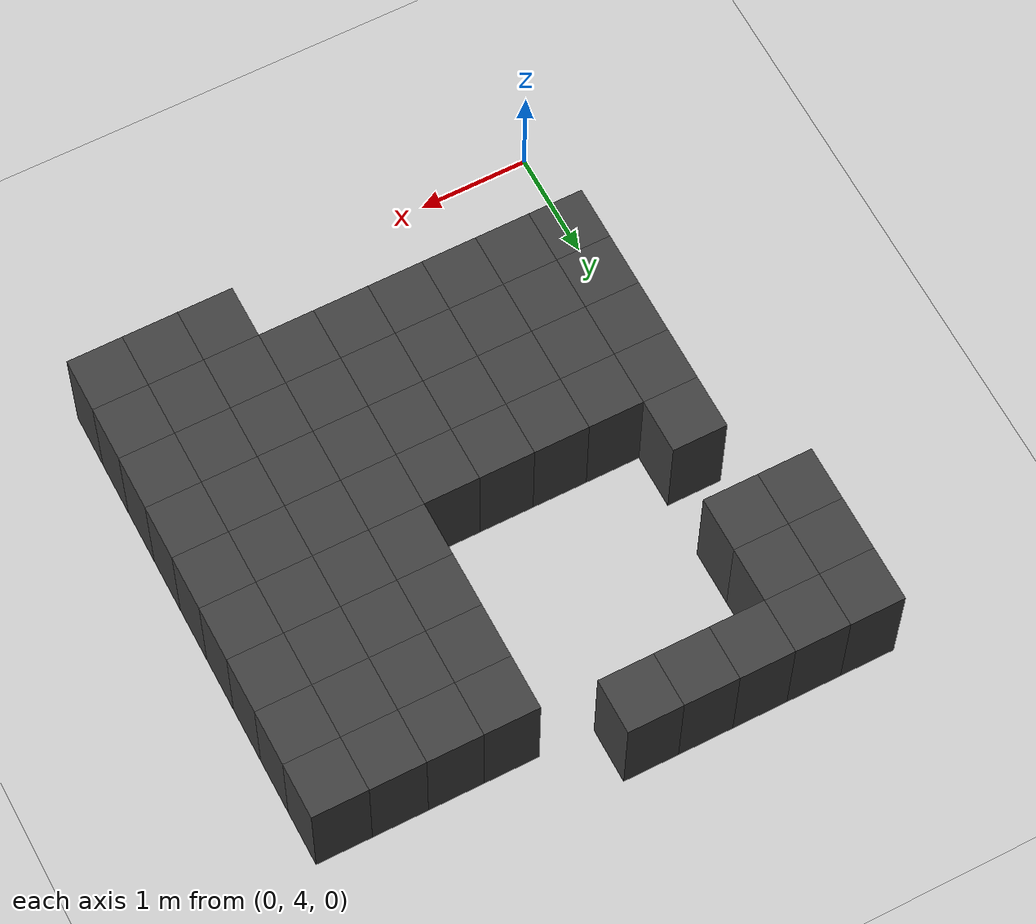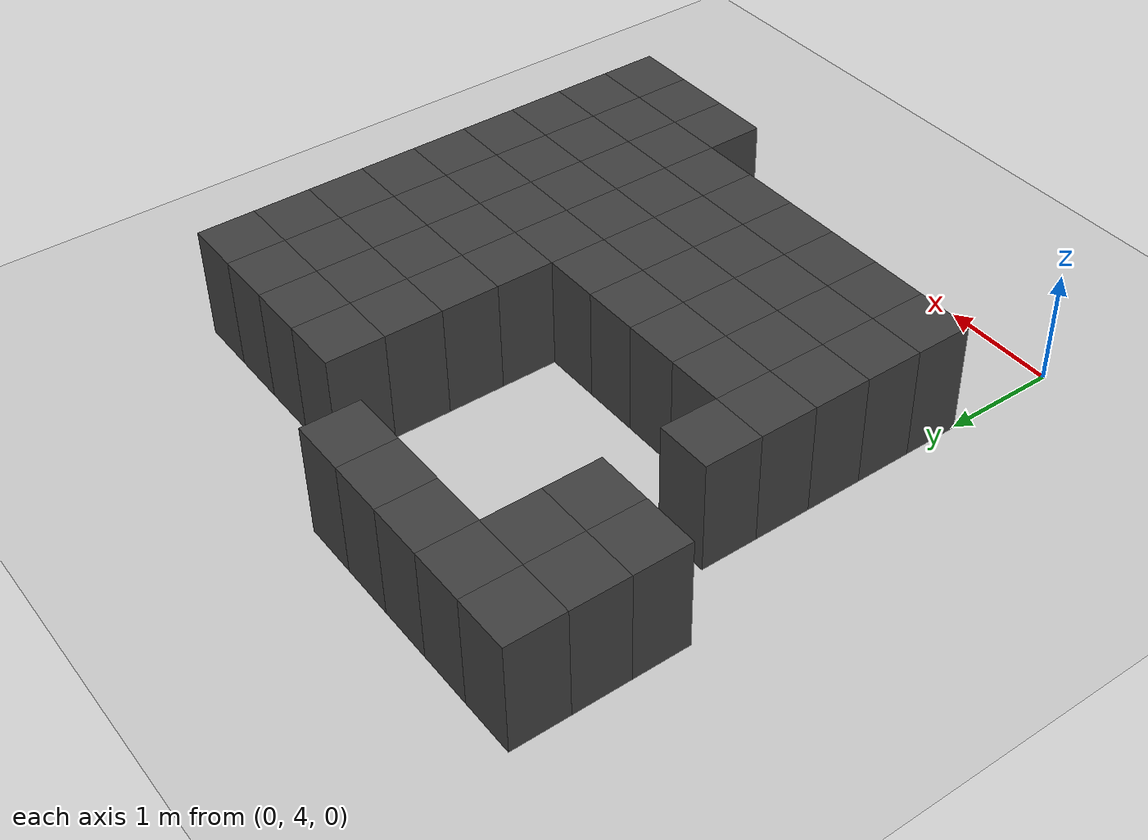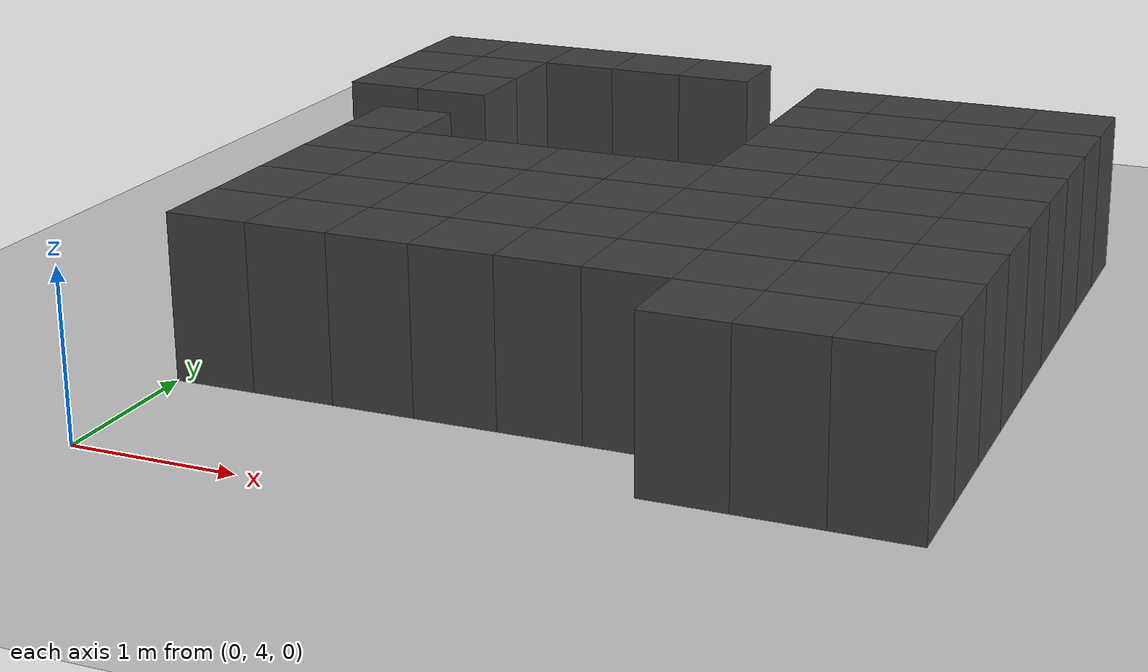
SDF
<sdf version="1.7">
 <world name="map_11515">
  <model name="ground_plane">
   <static>true</static>
   <link name="link">
    <collision name="collision">
     <geometry><plane><normal>0 0 1</normal><size>200 200</size></plane></geometry>
    </collision>
    <visual name="visual">
     <geometry><plane><normal>0 0 1</normal><size>200 200</size></plane></geometry>
     <material><ambient>0.8 0.8 0.8 1</ambient><diffuse>0.8 0.8 0.8 1</diffuse></material>
    </visual>
   </link>
  </model>
  <model name="maze_environment">
   <static>true</static>
   <link name="wall_300">
    <pose>-0.250 9.250 0.500 0 0 0</pose>
    <collision name="col"><geometry><box><size>0.5 0.5 1.0</size></box></geometry></collision>
    <visual name="vis">
     <geometry><box><size>0.5 0.5 1.0</size></box></geometry>
     <material><ambient>0.15 0.15 0.15 1</ambient><diffuse>0.25 0.25 0.25 1</diffuse></material>
    </visual>
   </link>
   <link name="wall_301">
    <pose>0.250 9.250 0.500 0 0 0</pose>
    <collision name="col"><geometry><box><size>0.5 0.5 1.0</size></box></geometry></collision>
    <visual name="vis">
     <geometry><box><size>0.5 0.5 1.0</size></box></geometry>
     <material><ambient>0.15 0.15 0.15 1</ambient><diffuse>0.25 0.25 0.25 1</diffuse></material>
    </visual>
   </link>
   <link name="wall_302">
    <pose>0.750 9.250 0.500 0 0 0</pose>
    <collision name="col"><geometry><box><size>0.5 0.5 1.0</size></box></geometry></collision>
    <visual name="vis">
     <geometry><box><size>0.5 0.5 1.0</size></box></geometry>
     <material><ambient>0.15 0.15 0.15 1</ambient><diffuse>0.25 0.25 0.25 1</diffuse></material>
    </visual>
   </link>
   <link name="wall_303">
    <pose>1.250 9.250 0.500 0 0 0</pose>
    <collision name="col"><geometry><box><size>0.5 0.5 1.0</size></box></geometry></collision>
    <visual name="vis">
     <geometry><box><size>0.5 0.5 1.0</size></box></geometry>
     <material><ambient>0.15 0.15 0.15 1</ambient><diffuse>0.25 0.25 0.25 1</diffuse></material>
    </visual>
   </link>
   <link name="wall_304">
    <pose>1.750 9.250 0.500 0 0 0</pose>
    <collision name="col"><geometry><box><size>0.5 0.5 1.0</size></box></geometry></collision>
    <visual name="vis">
     <geometry><box><size>0.5 0.5 1.0</size></box></geometry>
     <material><ambient>0.15 0.15 0.15 1</ambient><diffuse>0.25 0.25 0.25 1</diffuse></material>
    </visual>
   </link>
   <link name="wall_332">
    <pose>-0.250 8.750 0.500 0 0 0</pose>
    <collision name="col"><geometry><box><size>0.5 0.5 1.0</size></box></geometry></collision>
    <visual name="vis">
     <geometry><box><size>0.5 0.5 1.0</size></box></geometry>
     <material><ambient>0.15 0.15 0.15 1</ambient><diffuse>0.25 0.25 0.25 1</diffuse></material>
    </visual>
   </link>
   <link name="wall_333">
    <pose>0.250 8.750 0.500 0 0 0</pose>
    <collision name="col"><geometry><box><size>0.5 0.5 1.0</size></box></geometry></collision>
    <visual name="vis">
     <geometry><box><size>0.5 0.5 1.0</size></box></geometry>
     <material><ambient>0.15 0.15 0.15 1</ambient><diffuse>0.25 0.25 0.25 1</diffuse></material>
    </visual>
   </link>
   <link name="wall_334">
    <pose>2.750 8.750 0.500 0 0 0</pose>
    <collision name="col"><geometry><box><size>0.5 0.5 1.0</size></box></geometry></collision>
    <visual name="vis">
     <geometry><box><size>0.5 0.5 1.0</size></box></geometry>
     <material><ambient>0.15 0.15 0.15 1</ambient><diffuse>0.25 0.25 0.25 1</diffuse></material>
    </visual>
   </link>
   <link name="wall_335">
    <pose>3.250 8.750 0.500 0 0 0</pose>
    <collision name="col"><geometry><box><size>0.5 0.5 1.0</size></box></geometry></collision>
    <visual name="vis">
     <geometry><box><size>0.5 0.5 1.0</size></box></geometry>
     <material><ambient>0.15 0.15 0.15 1</ambient><diffuse>0.25 0.25 0.25 1</diffuse></material>
    </visual>
   </link>
   <link name="wall_336">
    <pose>3.750 8.750 0.500 0 0 0</pose>
    <collision name="col"><geometry><box><size>0.5 0.5 1.0</size></box></geometry></collision>
    <visual name="vis">
     <geometry><box><size>0.5 0.5 1.0</size></box></geometry>
     <material><ambient>0.15 0.15 0.15 1</ambient><diffuse>0.25 0.25 0.25 1</diffuse></material>
    </visual>
   </link>
   <link name="wall_337">
    <pose>4.250 8.750 0.500 0 0 0</pose>
    <collision name="col"><geometry><box><size>0.5 0.5 1.0</size></box></geometry></collision>
    <visual name="vis">
     <geometry><box><size>0.5 0.5 1.0</size></box></geometry>
     <material><ambient>0.15 0.15 0.15 1</ambient><diffuse>0.25 0.25 0.25 1</diffuse></material>
    </visual>
   </link>
   <link name="wall_372">
    <pose>-0.250 8.250 0.500 0 0 0</pose>
    <collision name="col"><geometry><box><size>0.5 0.5 1.0</size></box></geometry></collision>
    <visual name="vis">
     <geometry><box><size>0.5 0.5 1.0</size></box></geometry>
     <material><ambient>0.15 0.15 0.15 1</ambient><diffuse>0.25 0.25 0.25 1</diffuse></material>
    </visual>
   </link>
   <link name="wall_373">
    <pose>0.250 8.250 0.500 0 0 0</pose>
    <collision name="col"><geometry><box><size>0.5 0.5 1.0</size></box></geometry></collision>
    <visual name="vis">
     <geometry><box><size>0.5 0.5 1.0</size></box></geometry>
     <material><ambient>0.15 0.15 0.15 1</ambient><diffuse>0.25 0.25 0.25 1</diffuse></material>
    </visual>
   </link>
   <link name="wall_374">
    <pose>2.750 8.250 0.500 0 0 0</pose>
    <collision name="col"><geometry><box><size>0.5 0.5 1.0</size></box></geometry></collision>
    <visual name="vis">
     <geometry><box><size>0.5 0.5 1.0</size></box></geometry>
     <material><ambient>0.15 0.15 0.15 1</ambient><diffuse>0.25 0.25 0.25 1</diffuse></material>
    </visual>
   </link>
   <link name="wall_375">
    <pose>3.250 8.250 0.500 0 0 0</pose>
    <collision name="col"><geometry><box><size>0.5 0.5 1.0</size></box></geometry></collision>
    <visual name="vis">
     <geometry><box><size>0.5 0.5 1.0</size></box></geometry>
     <material><ambient>0.15 0.15 0.15 1</ambient><diffuse>0.25 0.25 0.25 1</diffuse></material>
    </visual>
   </link>
   <link name="wall_376">
    <pose>3.750 8.250 0.500 0 0 0</pose>
    <collision name="col"><geometry><box><size>0.5 0.5 1.0</size></box></geometry></collision>
    <visual name="vis">
     <geometry><box><size>0.5 0.5 1.0</size></box></geometry>
     <material><ambient>0.15 0.15 0.15 1</ambient><diffuse>0.25 0.25 0.25 1</diffuse></material>
    </visual>
   </link>
   <link name="wall_377">
    <pose>4.250 8.250 0.500 0 0 0</pose>
    <collision name="col"><geometry><box><size>0.5 0.5 1.0</size></box></geometry></collision>
    <visual name="vis">
     <geometry><box><size>0.5 0.5 1.0</size></box></geometry>
     <material><ambient>0.15 0.15 0.15 1</ambient><diffuse>0.25 0.25 0.25 1</diffuse></material>
    </visual>
   </link>
   <link name="wall_412">
    <pose>2.750 7.750 0.500 0 0 0</pose>
    <collision name="col"><geometry><box><size>0.5 0.5 1.0</size></box></geometry></collision>
    <visual name="vis">
     <geometry><box><size>0.5 0.5 1.0</size></box></geometry>
     <material><ambient>0.15 0.15 0.15 1</ambient><diffuse>0.25 0.25 0.25 1</diffuse></material>
    </visual>
   </link>
   <link name="wall_413">
    <pose>3.250 7.750 0.500 0 0 0</pose>
    <collision name="col"><geometry><box><size>0.5 0.5 1.0</size></box></geometry></collision>
    <visual name="vis">
     <geometry><box><size>0.5 0.5 1.0</size></box></geometry>
     <material><ambient>0.15 0.15 0.15 1</ambient><diffuse>0.25 0.25 0.25 1</diffuse></material>
    </visual>
   </link>
   <link name="wall_414">
    <pose>3.750 7.750 0.500 0 0 0</pose>
    <collision name="col"><geometry><box><size>0.5 0.5 1.0</size></box></geometry></collision>
    <visual name="vis">
     <geometry><box><size>0.5 0.5 1.0</size></box></geometry>
     <material><ambient>0.15 0.15 0.15 1</ambient><diffuse>0.25 0.25 0.25 1</diffuse></material>
    </visual>
   </link>
   <link name="wall_415">
    <pose>4.250 7.750 0.500 0 0 0</pose>
    <collision name="col"><geometry><box><size>0.5 0.5 1.0</size></box></geometry></collision>
    <visual name="vis">
     <geometry><box><size>0.5 0.5 1.0</size></box></geometry>
     <material><ambient>0.15 0.15 0.15 1</ambient><diffuse>0.25 0.25 0.25 1</diffuse></material>
    </visual>
   </link>
   <link name="wall_450">
    <pose>0.250 7.250 0.500 0 0 0</pose>
    <collision name="col"><geometry><box><size>0.5 0.5 1.0</size></box></geometry></collision>
    <visual name="vis">
     <geometry><box><size>0.5 0.5 1.0</size></box></geometry>
     <material><ambient>0.15 0.15 0.15 1</ambient><diffuse>0.25 0.25 0.25 1</diffuse></material>
    </visual>
   </link>
   <link name="wall_451">
    <pose>2.750 7.250 0.500 0 0 0</pose>
    <collision name="col"><geometry><box><size>0.5 0.5 1.0</size></box></geometry></collision>
    <visual name="vis">
     <geometry><box><size>0.5 0.5 1.0</size></box></geometry>
     <material><ambient>0.15 0.15 0.15 1</ambient><diffuse>0.25 0.25 0.25 1</diffuse></material>
    </visual>
   </link>
   <link name="wall_452">
    <pose>3.250 7.250 0.500 0 0 0</pose>
    <collision name="col"><geometry><box><size>0.5 0.5 1.0</size></box></geometry></collision>
    <visual name="vis">
     <geometry><box><size>0.5 0.5 1.0</size></box></geometry>
     <material><ambient>0.15 0.15 0.15 1</ambient><diffuse>0.25 0.25 0.25 1</diffuse></material>
    </visual>
   </link>
   <link name="wall_453">
    <pose>3.750 7.250 0.500 0 0 0</pose>
    <collision name="col"><geometry><box><size>0.5 0.5 1.0</size></box></geometry></collision>
    <visual name="vis">
     <geometry><box><size>0.5 0.5 1.0</size></box></geometry>
     <material><ambient>0.15 0.15 0.15 1</ambient><diffuse>0.25 0.25 0.25 1</diffuse></material>
    </visual>
   </link>
   <link name="wall_454">
    <pose>4.250 7.250 0.500 0 0 0</pose>
    <collision name="col"><geometry><box><size>0.5 0.5 1.0</size></box></geometry></collision>
    <visual name="vis">
     <geometry><box><size>0.5 0.5 1.0</size></box></geometry>
     <material><ambient>0.15 0.15 0.15 1</ambient><diffuse>0.25 0.25 0.25 1</diffuse></material>
    </visual>
   </link>
   <link name="wall_489">
    <pose>0.250 6.750 0.500 0 0 0</pose>
    <collision name="col"><geometry><box><size>0.5 0.5 1.0</size></box></geometry></collision>
    <visual name="vis">
     <geometry><box><size>0.5 0.5 1.0</size></box></geometry>
     <material><ambient>0.15 0.15 0.15 1</ambient><diffuse>0.25 0.25 0.25 1</diffuse></material>
    </visual>
   </link>
   <link name="wall_490">
    <pose>0.750 6.750 0.500 0 0 0</pose>
    <collision name="col"><geometry><box><size>0.5 0.5 1.0</size></box></geometry></collision>
    <visual name="vis">
     <geometry><box><size>0.5 0.5 1.0</size></box></geometry>
     <material><ambient>0.15 0.15 0.15 1</ambient><diffuse>0.25 0.25 0.25 1</diffuse></material>
    </visual>
   </link>
   <link name="wall_491">
    <pose>1.250 6.750 0.500 0 0 0</pose>
    <collision name="col"><geometry><box><size>0.5 0.5 1.0</size></box></geometry></collision>
    <visual name="vis">
     <geometry><box><size>0.5 0.5 1.0</size></box></geometry>
     <material><ambient>0.15 0.15 0.15 1</ambient><diffuse>0.25 0.25 0.25 1</diffuse></material>
    </visual>
   </link>
   <link name="wall_492">
    <pose>1.750 6.750 0.500 0 0 0</pose>
    <collision name="col"><geometry><box><size>0.5 0.5 1.0</size></box></geometry></collision>
    <visual name="vis">
     <geometry><box><size>0.5 0.5 1.0</size></box></geometry>
     <material><ambient>0.15 0.15 0.15 1</ambient><diffuse>0.25 0.25 0.25 1</diffuse></material>
    </visual>
   </link>
   <link name="wall_493">
    <pose>2.250 6.750 0.500 0 0 0</pose>
    <collision name="col"><geometry><box><size>0.5 0.5 1.0</size></box></geometry></collision>
    <visual name="vis">
     <geometry><box><size>0.5 0.5 1.0</size></box></geometry>
     <material><ambient>0.15 0.15 0.15 1</ambient><diffuse>0.25 0.25 0.25 1</diffuse></material>
    </visual>
   </link>
   <link name="wall_494">
    <pose>2.750 6.750 0.500 0 0 0</pose>
    <collision name="col"><geometry><box><size>0.5 0.5 1.0</size></box></geometry></collision>
    <visual name="vis">
     <geometry><box><size>0.5 0.5 1.0</size></box></geometry>
     <material><ambient>0.15 0.15 0.15 1</ambient><diffuse>0.25 0.25 0.25 1</diffuse></material>
    </visual>
   </link>
   <link name="wall_495">
    <pose>3.250 6.750 0.500 0 0 0</pose>
    <collision name="col"><geometry><box><size>0.5 0.5 1.0</size></box></geometry></collision>
    <visual name="vis">
     <geometry><box><size>0.5 0.5 1.0</size></box></geometry>
     <material><ambient>0.15 0.15 0.15 1</ambient><diffuse>0.25 0.25 0.25 1</diffuse></material>
    </visual>
   </link>
   <link name="wall_496">
    <pose>3.750 6.750 0.500 0 0 0</pose>
    <collision name="col"><geometry><box><size>0.5 0.5 1.0</size></box></geometry></collision>
    <visual name="vis">
     <geometry><box><size>0.5 0.5 1.0</size></box></geometry>
     <material><ambient>0.15 0.15 0.15 1</ambient><diffuse>0.25 0.25 0.25 1</diffuse></material>
    </visual>
   </link>
   <link name="wall_497">
    <pose>4.250 6.750 0.500 0 0 0</pose>
    <collision name="col"><geometry><box><size>0.5 0.5 1.0</size></box></geometry></collision>
    <visual name="vis">
     <geometry><box><size>0.5 0.5 1.0</size></box></geometry>
     <material><ambient>0.15 0.15 0.15 1</ambient><diffuse>0.25 0.25 0.25 1</diffuse></material>
    </visual>
   </link>
   <link name="wall_532">
    <pose>0.250 6.250 0.500 0 0 0</pose>
    <collision name="col"><geometry><box><size>0.5 0.5 1.0</size></box></geometry></collision>
    <visual name="vis">
     <geometry><box><size>0.5 0.5 1.0</size></box></geometry>
     <material><ambient>0.15 0.15 0.15 1</ambient><diffuse>0.25 0.25 0.25 1</diffuse></material>
    </visual>
   </link>
   <link name="wall_533">
    <pose>0.750 6.250 0.500 0 0 0</pose>
    <collision name="col"><geometry><box><size>0.5 0.5 1.0</size></box></geometry></collision>
    <visual name="vis">
     <geometry><box><size>0.5 0.5 1.0</size></box></geometry>
     <material><ambient>0.15 0.15 0.15 1</ambient><diffuse>0.25 0.25 0.25 1</diffuse></material>
    </visual>
   </link>
   <link name="wall_534">
    <pose>1.250 6.250 0.500 0 0 0</pose>
    <collision name="col"><geometry><box><size>0.5 0.5 1.0</size></box></geometry></collision>
    <visual name="vis">
     <geometry><box><size>0.5 0.5 1.0</size></box></geometry>
     <material><ambient>0.15 0.15 0.15 1</ambient><diffuse>0.25 0.25 0.25 1</diffuse></material>
    </visual>
   </link>
   <link name="wall_535">
    <pose>1.750 6.250 0.500 0 0 0</pose>
    <collision name="col"><geometry><box><size>0.5 0.5 1.0</size></box></geometry></collision>
    <visual name="vis">
     <geometry><box><size>0.5 0.5 1.0</size></box></geometry>
     <material><ambient>0.15 0.15 0.15 1</ambient><diffuse>0.25 0.25 0.25 1</diffuse></material>
    </visual>
   </link>
   <link name="wall_536">
    <pose>2.250 6.250 0.500 0 0 0</pose>
    <collision name="col"><geometry><box><size>0.5 0.5 1.0</size></box></geometry></collision>
    <visual name="vis">
     <geometry><box><size>0.5 0.5 1.0</size></box></geometry>
     <material><ambient>0.15 0.15 0.15 1</ambient><diffuse>0.25 0.25 0.25 1</diffuse></material>
    </visual>
   </link>
   <link name="wall_537">
    <pose>2.750 6.250 0.500 0 0 0</pose>
    <collision name="col"><geometry><box><size>0.5 0.5 1.0</size></box></geometry></collision>
    <visual name="vis">
     <geometry><box><size>0.5 0.5 1.0</size></box></geometry>
     <material><ambient>0.15 0.15 0.15 1</ambient><diffuse>0.25 0.25 0.25 1</diffuse></material>
    </visual>
   </link>
   <link name="wall_538">
    <pose>3.250 6.250 0.500 0 0 0</pose>
    <collision name="col"><geometry><box><size>0.5 0.5 1.0</size></box></geometry></collision>
    <visual name="vis">
     <geometry><box><size>0.5 0.5 1.0</size></box></geometry>
     <material><ambient>0.15 0.15 0.15 1</ambient><diffuse>0.25 0.25 0.25 1</diffuse></material>
    </visual>
   </link>
   <link name="wall_539">
    <pose>3.750 6.250 0.500 0 0 0</pose>
    <collision name="col"><geometry><box><size>0.5 0.5 1.0</size></box></geometry></collision>
    <visual name="vis">
     <geometry><box><size>0.5 0.5 1.0</size></box></geometry>
     <material><ambient>0.15 0.15 0.15 1</ambient><diffuse>0.25 0.25 0.25 1</diffuse></material>
    </visual>
   </link>
   <link name="wall_540">
    <pose>4.250 6.250 0.500 0 0 0</pose>
    <collision name="col"><geometry><box><size>0.5 0.5 1.0</size></box></geometry></collision>
    <visual name="vis">
     <geometry><box><size>0.5 0.5 1.0</size></box></geometry>
     <material><ambient>0.15 0.15 0.15 1</ambient><diffuse>0.25 0.25 0.25 1</diffuse></material>
    </visual>
   </link>
   <link name="wall_574">
    <pose>0.250 5.750 0.500 0 0 0</pose>
    <collision name="col"><geometry><box><size>0.5 0.5 1.0</size></box></geometry></collision>
    <visual name="vis">
     <geometry><box><size>0.5 0.5 1.0</size></box></geometry>
     <material><ambient>0.15 0.15 0.15 1</ambient><diffuse>0.25 0.25 0.25 1</diffuse></material>
    </visual>
   </link>
   <link name="wall_575">
    <pose>0.750 5.750 0.500 0 0 0</pose>
    <collision name="col"><geometry><box><size>0.5 0.5 1.0</size></box></geometry></collision>
    <visual name="vis">
     <geometry><box><size>0.5 0.5 1.0</size></box></geometry>
     <material><ambient>0.15 0.15 0.15 1</ambient><diffuse>0.25 0.25 0.25 1</diffuse></material>
    </visual>
   </link>
   <link name="wall_576">
    <pose>1.250 5.750 0.500 0 0 0</pose>
    <collision name="col"><geometry><box><size>0.5 0.5 1.0</size></box></geometry></collision>
    <visual name="vis">
     <geometry><box><size>0.5 0.5 1.0</size></box></geometry>
     <material><ambient>0.15 0.15 0.15 1</ambient><diffuse>0.25 0.25 0.25 1</diffuse></material>
    </visual>
   </link>
   <link name="wall_577">
    <pose>1.750 5.750 0.500 0 0 0</pose>
    <collision name="col"><geometry><box><size>0.5 0.5 1.0</size></box></geometry></collision>
    <visual name="vis">
     <geometry><box><size>0.5 0.5 1.0</size></box></geometry>
     <material><ambient>0.15 0.15 0.15 1</ambient><diffuse>0.25 0.25 0.25 1</diffuse></material>
    </visual>
   </link>
   <link name="wall_578">
    <pose>2.250 5.750 0.500 0 0 0</pose>
    <collision name="col"><geometry><box><size>0.5 0.5 1.0</size></box></geometry></collision>
    <visual name="vis">
     <geometry><box><size>0.5 0.5 1.0</size></box></geometry>
     <material><ambient>0.15 0.15 0.15 1</ambient><diffuse>0.25 0.25 0.25 1</diffuse></material>
    </visual>
   </link>
   <link name="wall_579">
    <pose>2.750 5.750 0.500 0 0 0</pose>
    <collision name="col"><geometry><box><size>0.5 0.5 1.0</size></box></geometry></collision>
    <visual name="vis">
     <geometry><box><size>0.5 0.5 1.0</size></box></geometry>
     <material><ambient>0.15 0.15 0.15 1</ambient><diffuse>0.25 0.25 0.25 1</diffuse></material>
    </visual>
   </link>
   <link name="wall_580">
    <pose>3.250 5.750 0.500 0 0 0</pose>
    <collision name="col"><geometry><box><size>0.5 0.5 1.0</size></box></geometry></collision>
    <visual name="vis">
     <geometry><box><size>0.5 0.5 1.0</size></box></geometry>
     <material><ambient>0.15 0.15 0.15 1</ambient><diffuse>0.25 0.25 0.25 1</diffuse></material>
    </visual>
   </link>
   <link name="wall_581">
    <pose>3.750 5.750 0.500 0 0 0</pose>
    <collision name="col"><geometry><box><size>0.5 0.5 1.0</size></box></geometry></collision>
    <visual name="vis">
     <geometry><box><size>0.5 0.5 1.0</size></box></geometry>
     <material><ambient>0.15 0.15 0.15 1</ambient><diffuse>0.25 0.25 0.25 1</diffuse></material>
    </visual>
   </link>
   <link name="wall_582">
    <pose>4.250 5.750 0.500 0 0 0</pose>
    <collision name="col"><geometry><box><size>0.5 0.5 1.0</size></box></geometry></collision>
    <visual name="vis">
     <geometry><box><size>0.5 0.5 1.0</size></box></geometry>
     <material><ambient>0.15 0.15 0.15 1</ambient><diffuse>0.25 0.25 0.25 1</diffuse></material>
    </visual>
   </link>
   <link name="wall_618">
    <pose>0.250 5.250 0.500 0 0 0</pose>
    <collision name="col"><geometry><box><size>0.5 0.5 1.0</size></box></geometry></collision>
    <visual name="vis">
     <geometry><box><size>0.5 0.5 1.0</size></box></geometry>
     <material><ambient>0.15 0.15 0.15 1</ambient><diffuse>0.25 0.25 0.25 1</diffuse></material>
    </visual>
   </link>
   <link name="wall_619">
    <pose>0.750 5.250 0.500 0 0 0</pose>
    <collision name="col"><geometry><box><size>0.5 0.5 1.0</size></box></geometry></collision>
    <visual name="vis">
     <geometry><box><size>0.5 0.5 1.0</size></box></geometry>
     <material><ambient>0.15 0.15 0.15 1</ambient><diffuse>0.25 0.25 0.25 1</diffuse></material>
    </visual>
   </link>
   <link name="wall_620">
    <pose>1.250 5.250 0.500 0 0 0</pose>
    <collision name="col"><geometry><box><size>0.5 0.5 1.0</size></box></geometry></collision>
    <visual name="vis">
     <geometry><box><size>0.5 0.5 1.0</size></box></geometry>
     <material><ambient>0.15 0.15 0.15 1</ambient><diffuse>0.25 0.25 0.25 1</diffuse></material>
    </visual>
   </link>
   <link name="wall_621">
    <pose>1.750 5.250 0.500 0 0 0</pose>
    <collision name="col"><geometry><box><size>0.5 0.5 1.0</size></box></geometry></collision>
    <visual name="vis">
     <geometry><box><size>0.5 0.5 1.0</size></box></geometry>
     <material><ambient>0.15 0.15 0.15 1</ambient><diffuse>0.25 0.25 0.25 1</diffuse></material>
    </visual>
   </link>
   <link name="wall_622">
    <pose>2.250 5.250 0.500 0 0 0</pose>
    <collision name="col"><geometry><box><size>0.5 0.5 1.0</size></box></geometry></collision>
    <visual name="vis">
     <geometry><box><size>0.5 0.5 1.0</size></box></geometry>
     <material><ambient>0.15 0.15 0.15 1</ambient><diffuse>0.25 0.25 0.25 1</diffuse></material>
    </visual>
   </link>
   <link name="wall_623">
    <pose>2.750 5.250 0.500 0 0 0</pose>
    <collision name="col"><geometry><box><size>0.5 0.5 1.0</size></box></geometry></collision>
    <visual name="vis">
     <geometry><box><size>0.5 0.5 1.0</size></box></geometry>
     <material><ambient>0.15 0.15 0.15 1</ambient><diffuse>0.25 0.25 0.25 1</diffuse></material>
    </visual>
   </link>
   <link name="wall_624">
    <pose>3.250 5.250 0.500 0 0 0</pose>
    <collision name="col"><geometry><box><size>0.5 0.5 1.0</size></box></geometry></collision>
    <visual name="vis">
     <geometry><box><size>0.5 0.5 1.0</size></box></geometry>
     <material><ambient>0.15 0.15 0.15 1</ambient><diffuse>0.25 0.25 0.25 1</diffuse></material>
    </visual>
   </link>
   <link name="wall_625">
    <pose>3.750 5.250 0.500 0 0 0</pose>
    <collision name="col"><geometry><box><size>0.5 0.5 1.0</size></box></geometry></collision>
    <visual name="vis">
     <geometry><box><size>0.5 0.5 1.0</size></box></geometry>
     <material><ambient>0.15 0.15 0.15 1</ambient><diffuse>0.25 0.25 0.25 1</diffuse></material>
    </visual>
   </link>
   <link name="wall_626">
    <pose>4.250 5.250 0.500 0 0 0</pose>
    <collision name="col"><geometry><box><size>0.5 0.5 1.0</size></box></geometry></collision>
    <visual name="vis">
     <geometry><box><size>0.5 0.5 1.0</size></box></geometry>
     <material><ambient>0.15 0.15 0.15 1</ambient><diffuse>0.25 0.25 0.25 1</diffuse></material>
    </visual>
   </link>
   <link name="wall_664">
    <pose>3.250 4.750 0.500 0 0 0</pose>
    <collision name="col"><geometry><box><size>0.5 0.5 1.0</size></box></geometry></collision>
    <visual name="vis">
     <geometry><box><size>0.5 0.5 1.0</size></box></geometry>
     <material><ambient>0.15 0.15 0.15 1</ambient><diffuse>0.25 0.25 0.25 1</diffuse></material>
    </visual>
   </link>
   <link name="wall_665">
    <pose>3.750 4.750 0.500 0 0 0</pose>
    <collision name="col"><geometry><box><size>0.5 0.5 1.0</size></box></geometry></collision>
    <visual name="vis">
     <geometry><box><size>0.5 0.5 1.0</size></box></geometry>
     <material><ambient>0.15 0.15 0.15 1</ambient><diffuse>0.25 0.25 0.25 1</diffuse></material>
    </visual>
   </link>
   <link name="wall_666">
    <pose>4.250 4.750 0.500 0 0 0</pose>
    <collision name="col"><geometry><box><size>0.5 0.5 1.0</size></box></geometry></collision>
    <visual name="vis">
     <geometry><box><size>0.5 0.5 1.0</size></box></geometry>
     <material><ambient>0.15 0.15 0.15 1</ambient><diffuse>0.25 0.25 0.25 1</diffuse></material>
    </visual>
   </link>
  </model>
 </world>
</sdf>
